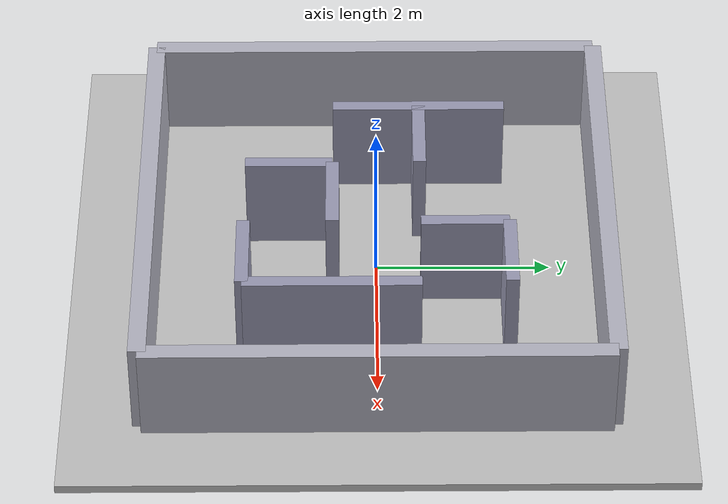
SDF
<?xml version="1.0" ?>
<sdf version="1.9">
  <world name="maze_arena">

    <!-- ================= Physics & plugins (Harmonic) ================= -->
    <physics name="1ms" type="ignored">
      <max_step_size>0.001</max_step_size>
      <real_time_factor>1.0</real_time_factor>
    </physics>

    <plugin filename="gz-sim-physics-system"
            name="gz::sim::systems::Physics"/>

    <plugin filename="gz-sim-user-commands-system"
            name="gz::sim::systems::UserCommands"/>

    <plugin filename="gz-sim-scene-broadcaster-system"
            name="gz::sim::systems::SceneBroadcaster"/>

    <!-- Required so the lidar sensor renders on the GPU. -->
    <plugin filename="gz-sim-sensors-system"
            name="gz::sim::systems::Sensors">
      <render_engine>ogre2</render_engine>
    </plugin>

    <!-- ======================== Lighting =============================== -->
    <light type="directional" name="sun">
      <cast_shadows>true</cast_shadows>
      <pose>0 0 10 0 0 0</pose>
      <diffuse>0.8 0.8 0.8 1</diffuse>
      <specular>0.2 0.2 0.2 1</specular>
      <attenuation>
        <range>1000</range>
        <constant>0.9</constant>
        <linear>0.01</linear>
        <quadratic>0.001</quadratic>
      </attenuation>
      <direction>-0.5 0.1 -0.9</direction>
    </light>

    <!-- ====================== Ground plane ============================= -->
    <model name="ground_plane">
      <static>true</static>
      <link name="link">
        <collision name="collision">
          <geometry>
            <box>
              <size>7 7 0.1</size>
            </box>
          </geometry>
          <surface>
            <friction>
              <ode>
                <!-- Same explicit grip as the office arena: without it the
                     DiffDrive wheels slip and odom over-reports motion. -->
                <mu>2.0</mu>
                <mu2>2.0</mu2>
              </ode>
            </friction>
          </surface>
        </collision>
        <visual name="visual">
          <geometry>
            <box>
              <size>7 7 0.1</size>
            </box>
          </geometry>
          <material>
            <ambient>0.75 0.75 0.75 1</ambient>
            <diffuse>0.75 0.75 0.75 1</diffuse>
            <specular>0.1 0.1 0.1 1</specular>
          </material>
        </visual>
      </link>
    </model>

    <!-- =================== Enclosure walls (static) ==================== -->
    <!-- Inner faces sit exactly on x=+/-2.5 and y=+/-2.5 -> clean 5x5 m. -->
    <model name="wall_north">
      <static>true</static>
      <pose>0 2.6 0.6 0 0 0</pose>
      <link name="link">
        <collision name="collision">
          <geometry>
            <box>
              <size>5.2 0.2 1.2</size>
            </box>
          </geometry>
        </collision>
        <visual name="visual">
          <geometry>
            <box>
              <size>5.2 0.2 1.2</size>
            </box>
          </geometry>
          <material>
            <ambient>0.7 0.7 0.75 1</ambient>
            <diffuse>0.7 0.7 0.75 1</diffuse>
          </material>
        </visual>
      </link>
    </model>

    <model name="wall_south">
      <static>true</static>
      <pose>0 -2.6 0.6 0 0 0</pose>
      <link name="link">
        <collision name="collision">
          <geometry>
            <box>
              <size>5.2 0.2 1.2</size>
            </box>
          </geometry>
        </collision>
        <visual name="visual">
          <geometry>
            <box>
              <size>5.2 0.2 1.2</size>
            </box>
          </geometry>
          <material>
            <ambient>0.7 0.7 0.75 1</ambient>
            <diffuse>0.7 0.7 0.75 1</diffuse>
          </material>
        </visual>
      </link>
    </model>

    <model name="wall_east">
      <static>true</static>
      <pose>2.6 0 0.6 0 0 0</pose>
      <link name="link">
        <collision name="collision">
          <geometry>
            <box>
              <size>0.2 5.2 1.2</size>
            </box>
          </geometry>
        </collision>
        <visual name="visual">
          <geometry>
            <box>
              <size>0.2 5.2 1.2</size>
            </box>
          </geometry>
          <material>
            <ambient>0.7 0.7 0.75 1</ambient>
            <diffuse>0.7 0.7 0.75 1</diffuse>
          </material>
        </visual>
      </link>
    </model>

    <model name="wall_west">
      <static>true</static>
      <pose>-2.6 0 0.6 0 0 0</pose>
      <link name="link">
        <collision name="collision">
          <geometry>
            <box>
              <size>0.2 5.2 1.2</size>
            </box>
          </geometry>
        </collision>
        <visual name="visual">
          <geometry>
            <box>
              <size>0.2 5.2 1.2</size>
            </box>
          </geometry>
          <material>
            <ambient>0.7 0.7 0.75 1</ambient>
            <diffuse>0.7 0.7 0.75 1</diffuse>
          </material>
        </visual>
      </link>
    </model>

    <!-- ================== Interior maze walls (static) ================= -->
    <!-- v1: west divider, north half -->
    <model name="maze_v1">
      <static>true</static>
      <pose>-1.5 0.5 0.6 0 0 0</pose>
      <link name="link">
        <collision name="collision">
          <geometry>
            <box>
              <size>0.15 2.0 1.2</size>
            </box>
          </geometry>
        </collision>
        <visual name="visual">
          <geometry>
            <box>
              <size>0.15 2.0 1.2</size>
            </box>
          </geometry>
          <material>
            <ambient>0.6 0.6 0.7 1</ambient>
            <diffuse>0.6 0.6 0.7 1</diffuse>
          </material>
        </visual>
      </link>
    </model>

    <model name="maze_v2">
      <static>true</static>
      <pose>-0.5 -1.0 0.6 0 0 0</pose>
      <link name="link">
        <collision name="collision">
          <geometry>
            <box>
              <size>0.15 1.0 1.2</size>
            </box>
          </geometry>
        </collision>
        <visual name="visual">
          <geometry>
            <box>
              <size>0.15 1.0 1.2</size>
            </box>
          </geometry>
          <material>
            <ambient>0.6 0.6 0.7 1</ambient>
            <diffuse>0.6 0.6 0.7 1</diffuse>
          </material>
        </visual>
      </link>
    </model>

    <model name="maze_v3">
      <static>true</static>
      <pose>0.5 1.0 0.6 0 0 0</pose>
      <link name="link">
        <collision name="collision">
          <geometry>
            <box>
              <size>0.15 1.0 1.2</size>
            </box>
          </geometry>
        </collision>
        <visual name="visual">
          <geometry>
            <box>
              <size>0.15 1.0 1.2</size>
            </box>
          </geometry>
          <material>
            <ambient>0.6 0.6 0.7 1</ambient>
            <diffuse>0.6 0.6 0.7 1</diffuse>
          </material>
        </visual>
      </link>
    </model>

    <model name="maze_v4">
      <static>true</static>
      <pose>1.5 -0.5 0.6 0 0 0</pose>
      <link name="link">
        <collision name="collision">
          <geometry>
            <box>
              <size>0.15 2.0 1.2</size>
            </box>
          </geometry>
        </collision>
        <visual name="visual">
          <geometry>
            <box>
              <size>0.15 2.0 1.2</size>
            </box>
          </geometry>
          <material>
            <ambient>0.6 0.6 0.7 1</ambient>
            <diffuse>0.6 0.6 0.7 1</diffuse>
          </material>
        </visual>
      </link>
    </model>

    <model name="maze_h1">
      <static>true</static>
      <pose>0.0 -0.5 0.6 0 0 0</pose>
      <link name="link">
        <collision name="collision">
          <geometry>
            <box>
              <size>1.0 0.15 1.2</size>
            </box>
          </geometry>
        </collision>
        <visual name="visual">
          <geometry>
            <box>
              <size>1.0 0.15 1.2</size>
            </box>
          </geometry>
          <material>
            <ambient>0.6 0.6 0.7 1</ambient>
            <diffuse>0.6 0.6 0.7 1</diffuse>
          </material>
        </visual>
      </link>
    </model>

    <model name="maze_h2">
      <static>true</static>
      <pose>-1.0 0.5 0.6 0 0 0</pose>
      <link name="link">
        <collision name="collision">
          <geometry>
            <box>
              <size>1.0 0.15 1.2</size>
            </box>
          </geometry>
        </collision>
        <visual name="visual">
          <geometry>
            <box>
              <size>1.0 0.15 1.2</size>
            </box>
          </geometry>
          <material>
            <ambient>0.6 0.6 0.7 1</ambient>
            <diffuse>0.6 0.6 0.7 1</diffuse>
          </material>
        </visual>
      </link>
    </model>

    <model name="maze_h3">
      <static>true</static>
      <pose>1.0 -1.5 0.6 0 0 0</pose>
      <link name="link">
        <collision name="collision">
          <geometry>
            <box>
              <size>1.0 0.15 1.2</size>
            </box>
          </geometry>
        </collision>
        <visual name="visual">
          <geometry>
            <box>
              <size>1.0 0.15 1.2</size>
            </box>
          </geometry>
          <material>
            <ambient>0.6 0.6 0.7 1</ambient>
            <diffuse>0.6 0.6 0.7 1</diffuse>
          </material>
        </visual>
      </link>
    </model>

    <model name="maze_h4">
      <static>true</static>
      <pose>1.0 1.5 0.6 0 0 0</pose>
      <link name="link">
        <collision name="collision">
          <geometry>
            <box>
              <size>1.0 0.15 1.2</size>
            </box>
          </geometry>
        </collision>
        <visual name="visual">
          <geometry>
            <box>
              <size>1.0 0.15 1.2</size>
            </box>
          </geometry>
          <material>
            <ambient>0.6 0.6 0.7 1</ambient>
            <diffuse>0.6 0.6 0.7 1</diffuse>
          </material>
        </visual>
      </link>
    </model>

  </world>
</sdf>
